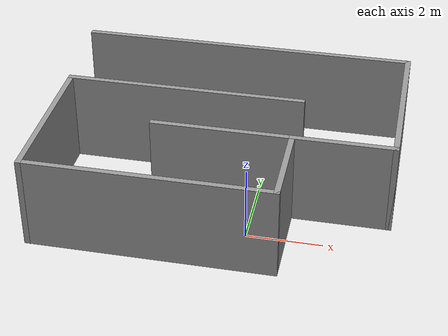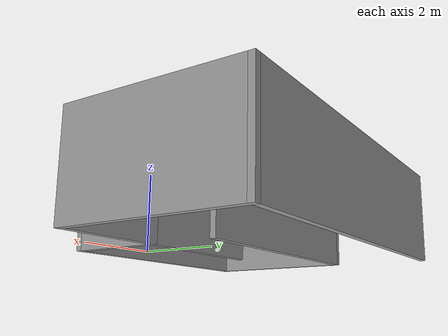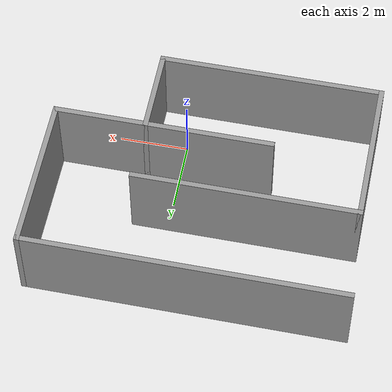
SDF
<?xml version='1.0'?>
<sdf version='1.7'>
  <model name='maze?'>
    <pose>-0.98 2.04 0 0 -0 0</pose>
    <link name='Wall_11'>
      <collision name='Wall_11_Collision'>
        <geometry>
          <box>
            <size>2.75 0.15 2.5</size>
          </box>
        </geometry>
        <pose>0 0 1.25 0 -0 0</pose>
      </collision>
      <visual name='Wall_11_Visual'>
        <pose>0 0 1.25 0 -0 0</pose>
        <geometry>
          <box>
            <size>2.75 0.15 2.5</size>
          </box>
        </geometry>
        <material>
          <script>
            <uri>file://media/materials/scripts/gazebo.material</uri>
            <name>Gazebo/Grey</name>
          </script>
          <ambient>1 1 1 1</ambient>
        </material>
        <meta>
          <layer>0</layer>
        </meta>
      </visual>
      <pose>3.25 -1 0 0 -0 0</pose>
    </link>
    <link name='Wall_13'>
      <collision name='Wall_13_Collision'>
        <geometry>
          <box>
            <size>4.5 0.15 2.5</size>
          </box>
        </geometry>
        <pose>0 0 1.25 0 -0 0</pose>
      </collision>
      <visual name='Wall_13_Visual'>
        <pose>0 0 1.25 0 -0 0</pose>
        <geometry>
          <box>
            <size>4.5 0.15 2.5</size>
          </box>
        </geometry>
        <material>
          <script>
            <uri>file://media/materials/scripts/gazebo.material</uri>
            <name>Gazebo/Grey</name>
          </script>
          <ambient>1 1 1 1</ambient>
        </material>
        <meta>
          <layer>0</layer>
        </meta>
      </visual>
      <pose>4.55 1.175 0 0 -0 1.5708</pose>
    </link>
    <link name='Wall_14'>
      <collision name='Wall_14_Collision'>
        <geometry>
          <box>
            <size>9.25 0.15 2.5</size>
          </box>
        </geometry>
        <pose>0 0 1.25 0 -0 0</pose>
      </collision>
      <visual name='Wall_14_Visual'>
        <pose>0 0 1.25 0 -0 0</pose>
        <geometry>
          <box>
            <size>9.25 0.15 2.5</size>
          </box>
        </geometry>
        <material>
          <script>
            <uri>file://media/materials/scripts/gazebo.material</uri>
            <name>Gazebo/Grey</name>
          </script>
          <ambient>1 1 1 1</ambient>
        </material>
        <meta>
          <layer>0</layer>
        </meta>
      </visual>
      <pose>-0 3.35 0 0 -0 3.14159</pose>
    </link>
    <link name='Wall_3'>
      <collision name='Wall_3_Collision'>
        <geometry>
          <box>
            <size>3.75 0.15 2.5</size>
          </box>
        </geometry>
        <pose>0 0 1.25 0 -0 0</pose>
      </collision>
      <visual name='Wall_3_Visual'>
        <pose>0 0 1.25 0 -0 0</pose>
        <geometry>
          <box>
            <size>3.75 0.15 2.5</size>
          </box>
        </geometry>
        <material>
          <script>
            <uri>file://media/materials/scripts/gazebo.material</uri>
            <name>Gazebo/Grey</name>
          </script>
          <ambient>1 1 1 1</ambient>
        </material>
        <meta>
          <layer>0</layer>
        </meta>
      </visual>
      <pose>0.15 -1 0 0 -0 0</pose>
    </link>
    <link name='Wall_5'>
      <collision name='Wall_5_Collision'>
        <geometry>
          <box>
            <size>2.5 0.15 2.5</size>
          </box>
        </geometry>
        <pose>0 0 1.25 0 -0 0</pose>
      </collision>
      <visual name='Wall_5_Visual'>
        <pose>0 0 1.25 0 -0 0</pose>
        <geometry>
          <box>
            <size>2.5 0.15 2.5</size>
          </box>
        </geometry>
        <material>
          <script>
            <uri>file://media/materials/scripts/gazebo.material</uri>
            <name>Gazebo/Grey</name>
          </script>
          <ambient>1 1 1 1</ambient>
        </material>
        <meta>
          <layer>0</layer>
        </meta>
      </visual>
      <pose>1.95 -2.175 0 0 -0 -1.5708</pose>
    </link>
    <link name='Wall_6'>
      <collision name='Wall_6_Collision'>
        <geometry>
          <box>
            <size>6.5 0.15 2.5</size>
          </box>
        </geometry>
        <pose>0 0 1.25 0 -0 0</pose>
      </collision>
      <visual name='Wall_6_Visual'>
        <pose>0 0 1.25 0 -0 0</pose>
        <geometry>
          <box>
            <size>6.5 0.15 2.5</size>
          </box>
        </geometry>
        <material>
          <script>
            <uri>file://media/materials/scripts/gazebo.material</uri>
            <name>Gazebo/Grey</name>
          </script>
          <ambient>1 1 1 1</ambient>
        </material>
        <meta>
          <layer>0</layer>
        </meta>
      </visual>
      <pose>-1.225 -3.35 0 0 -0 3.14159</pose>
    </link>
    <link name='Wall_8'>
      <collision name='Wall_8_Collision'>
        <geometry>
          <box>
            <size>4.25 0.15 2.5</size>
          </box>
        </geometry>
        <pose>0 0 1.25 0 -0 0</pose>
      </collision>
      <visual name='Wall_8_Visual'>
        <pose>0 0 1.25 0 -0 0</pose>
        <geometry>
          <box>
            <size>4.25 0.15 2.5</size>
          </box>
        </geometry>
        <material>
          <script>
            <uri>file://media/materials/scripts/gazebo.material</uri>
            <name>Gazebo/Grey</name>
          </script>
          <ambient>1 1 1 1</ambient>
        </material>
        <meta>
          <layer>0</layer>
        </meta>
      </visual>
      <pose>-4.4 -1.3 0 0 -0 1.5708</pose>
    </link>
    <link name='Wall_9'>
      <collision name='Wall_9_Collision'>
        <geometry>
          <box>
            <size>6.5 0.15 2.5</size>
          </box>
        </geometry>
        <pose>0 0 1.25 0 -0 0</pose>
      </collision>
      <visual name='Wall_9_Visual'>
        <pose>0 0 1.25 0 -0 0</pose>
        <geometry>
          <box>
            <size>6.5 0.15 2.5</size>
          </box>
        </geometry>
        <material>
          <script>
            <uri>file://media/materials/scripts/gazebo.material</uri>
            <name>Gazebo/Grey</name>
          </script>
          <ambient>1 1 1 1</ambient>
        </material>
        <meta>
          <layer>0</layer>
        </meta>
      </visual>
      <pose>-1.225 0.75 0 0 -0 0</pose>
    </link>
    <static>1</static>
  </model>
</sdf>
